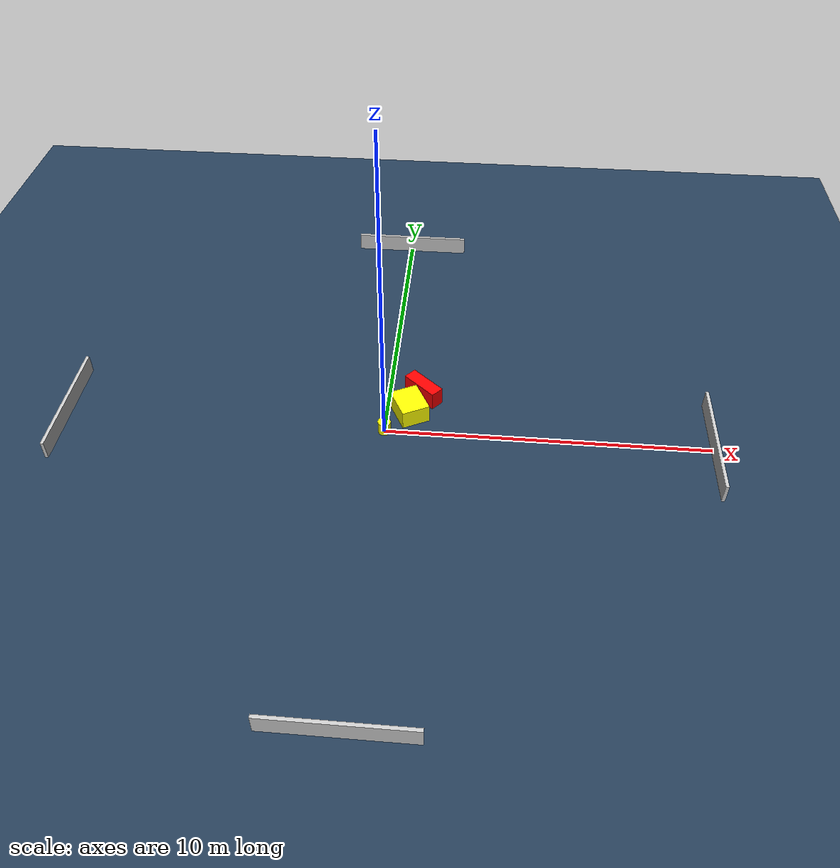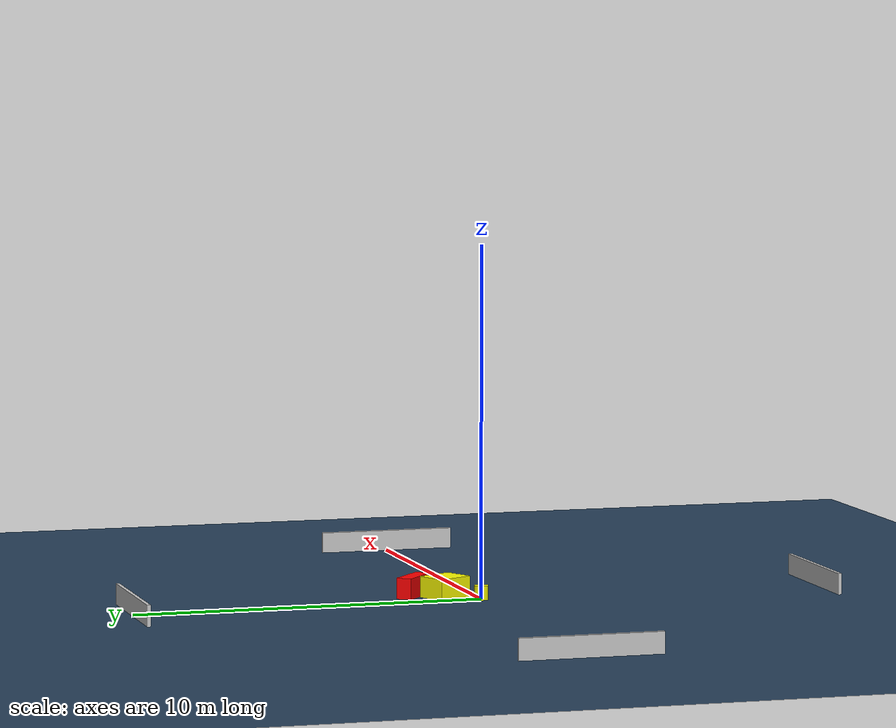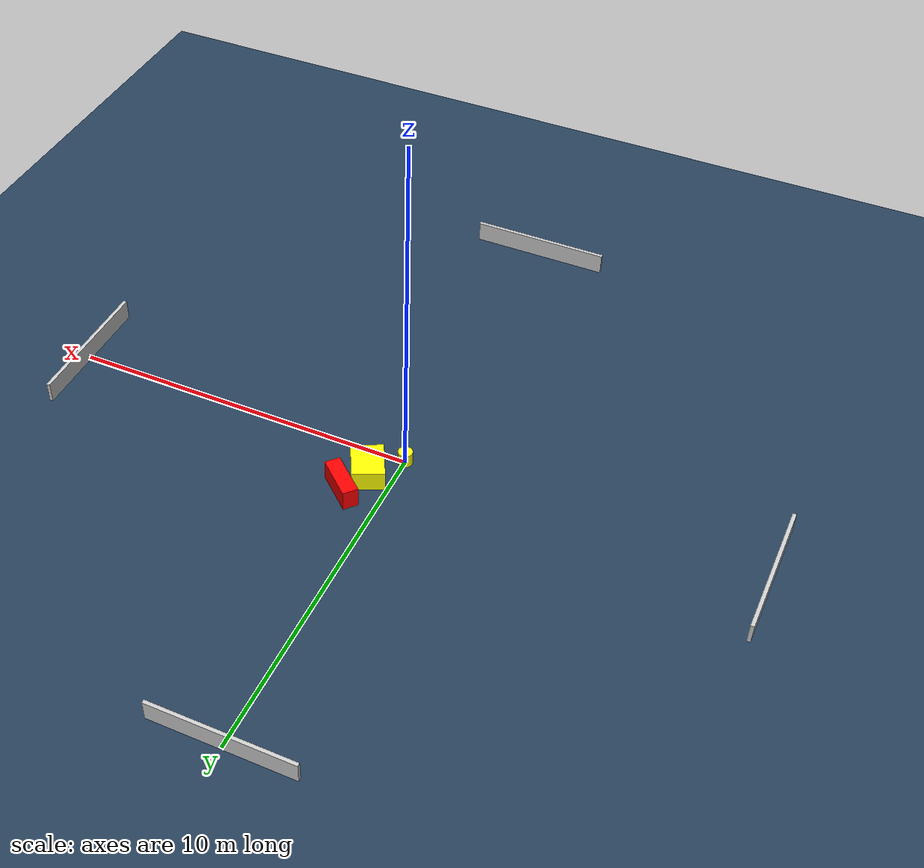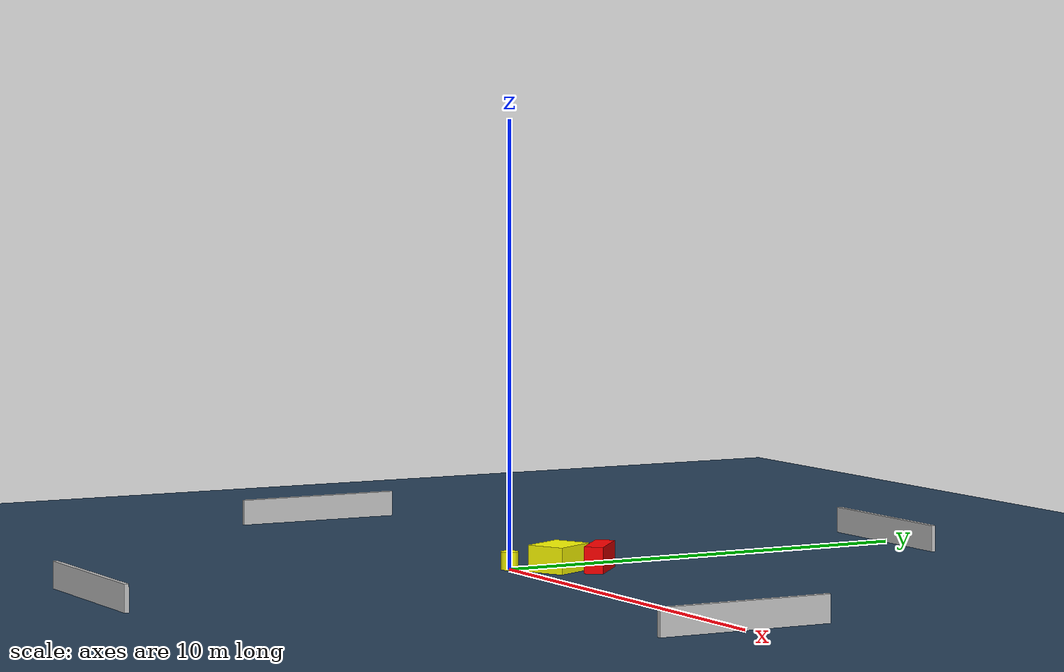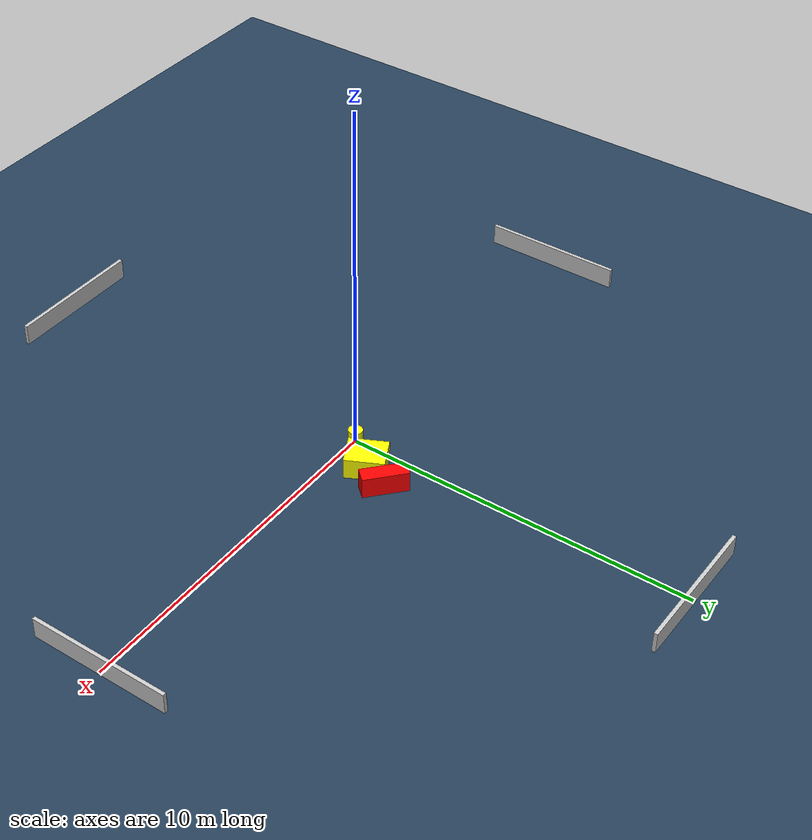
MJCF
<?xml version="1.0" ?>
<mujoco model="generated_environment">
  <option timestep="0.01" integrator="RK4" cone="elliptic"/>
  <default>
    <geom density="1"/>
  </default>
  <asset>
    <texture builtin="gradient" height="3072" name="skybox" rgb1="0.3 0.5 0.7" rgb2="0 0 0" type="skybox" width="512"/>
    <texture builtin="checker" height="300" name="groundplane" rgb1="0.2 0.3 0.4" rgb2="0.1 0.2 0.3" type="2d" width="300"/>
    <material name="groundplane" reflectance="0.2" texrepeat="5 5" texture="groundplane"/>
  </asset>
  <worldbody>
    <light dir="0 0 -1" directional="true" pos="0 0 1.5"/>
    <geom condim="3" friction="0.5 0.005 0.001" material="groundplane" name="floor" pos="0 0 0" size="0 0 0.05" type="plane"/>
    <body name="walls">
      <geom name="wall_1" condim="4" pos="-10.0 0.0 0.3" rgba="0.800000011920929 0.800000011920929 0.800000011920929 1.0" size="0.05 2.0 0.3" type="box"/>
      <geom name="wall_2" condim="4" pos="10.0 0.0 0.3" rgba="0.800000011920929 0.800000011920929 0.800000011920929 1.0" size="0.05 2.0 0.3" type="box"/>
      <geom name="wall_3" condim="4" pos="0.0 -10.0 0.3" rgba="0.800000011920929 0.800000011920929 0.800000011920929 1.0" size="2.0 0.05 0.3" type="box"/>
      <geom name="wall_4" condim="4" pos="0.0 10.0 0.3" rgba="0.800000011920929 0.800000011920929 0.800000011920929 1.0" size="2.0 0.05 0.3" type="box"/>
    </body>
    <body name="robot">
      <joint name="joint_x" type="slide" pos="0 0 0" axis="1 0 0"/>
      <joint name="joint_y" type="slide" pos="0 0 0" axis="0 1 0"/>
      <geom name="robot" type="cylinder" pos="0.0 0.0 0.2" size="0.2 0.2 0.0" mass="5.0" friction="1.0 0.005 0.0001" condim="4" rgba="1.0 1.0 0.0 1.0"/>
    </body>
    <body name="obstacle_1_movable">
      <geom name="obstacle_1_movable" condim="4" pos="0.705622108872502 0.8621982682619064 0.3" euler="0 0 296.87676516334017" friction="0.0 0.005 0.001" rgba="1.0 1.0 0.0 1.0" size="0.5423857586656053 0.4475827065154103 0.3" type="box" mass="0.1"/>
      <joint type="free"/>
    </body>
    <body name="obstacle_2_static">
      <geom name="obstacle_2_static" condim="4" pos="1.0762639575600033 1.6856914359740458 0.3" euler="0 0 48.45291952171001" friction="0.0 0.005 0.001" rgba="1.0 0.0 0.0 1.0" size="0.21748736991092077 0.6290434915524069 0.3" type="box"/>
    </body>
  </worldbody>
  <actuator>
    <motor name="actuator_x" joint="joint_x" gear="1" ctrlrange="-1 1"/>
    <motor name="actuator_y" joint="joint_y" gear="1" ctrlrange="-1 1"/>
  </actuator>
</mujoco>
